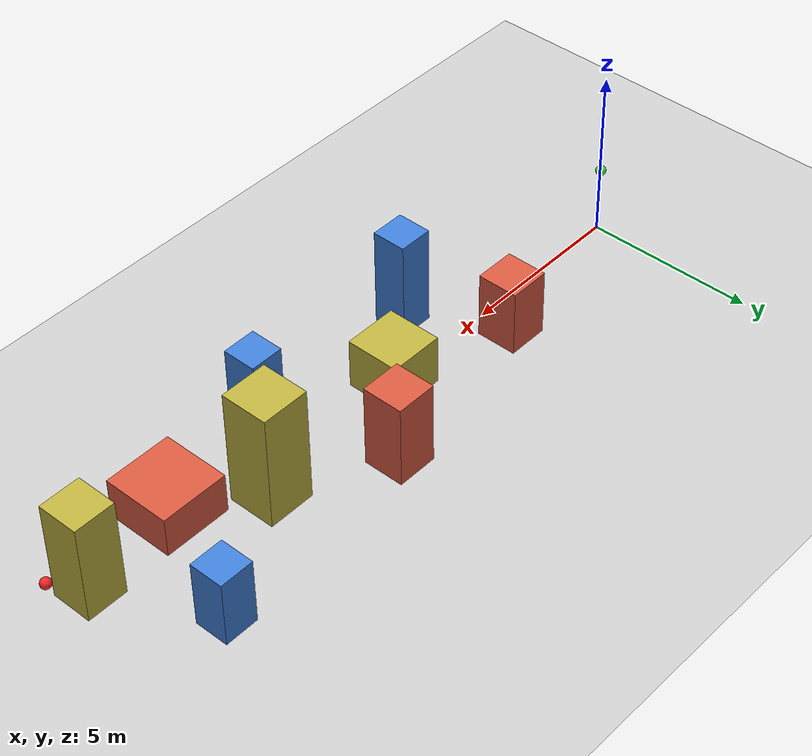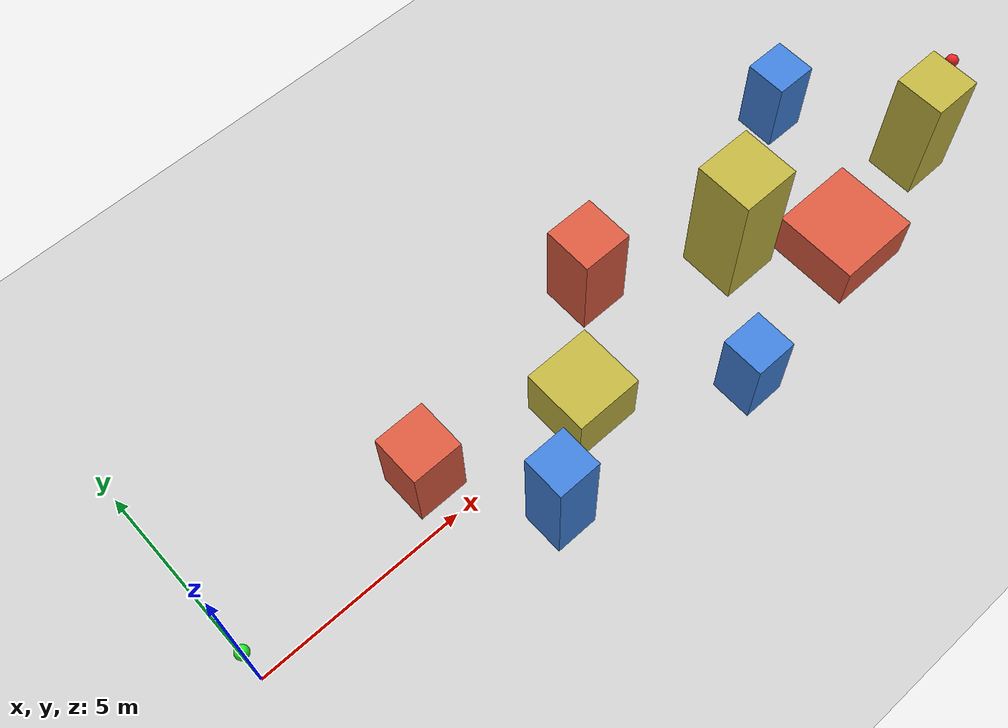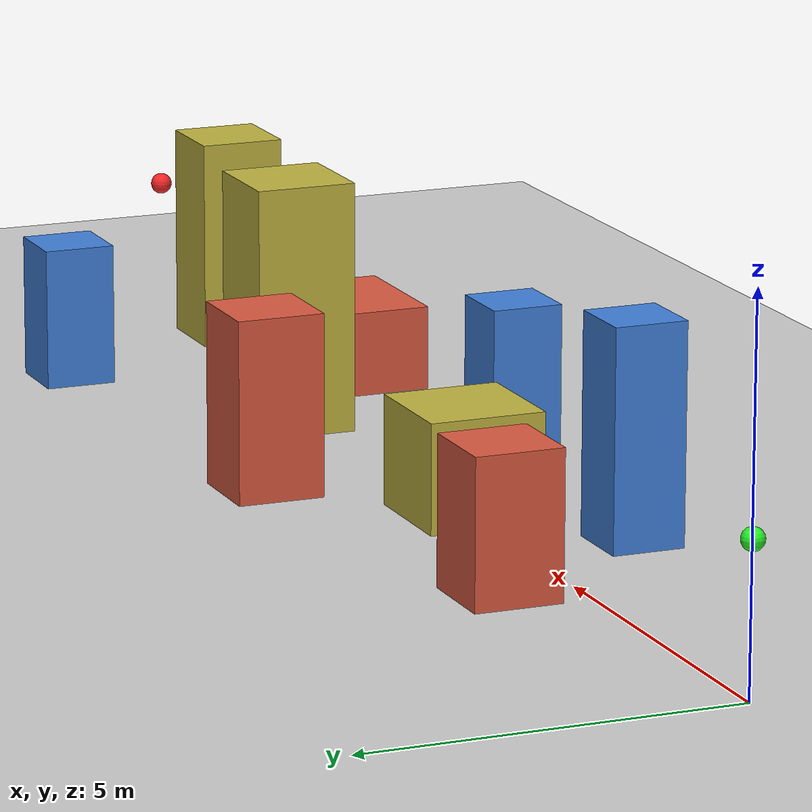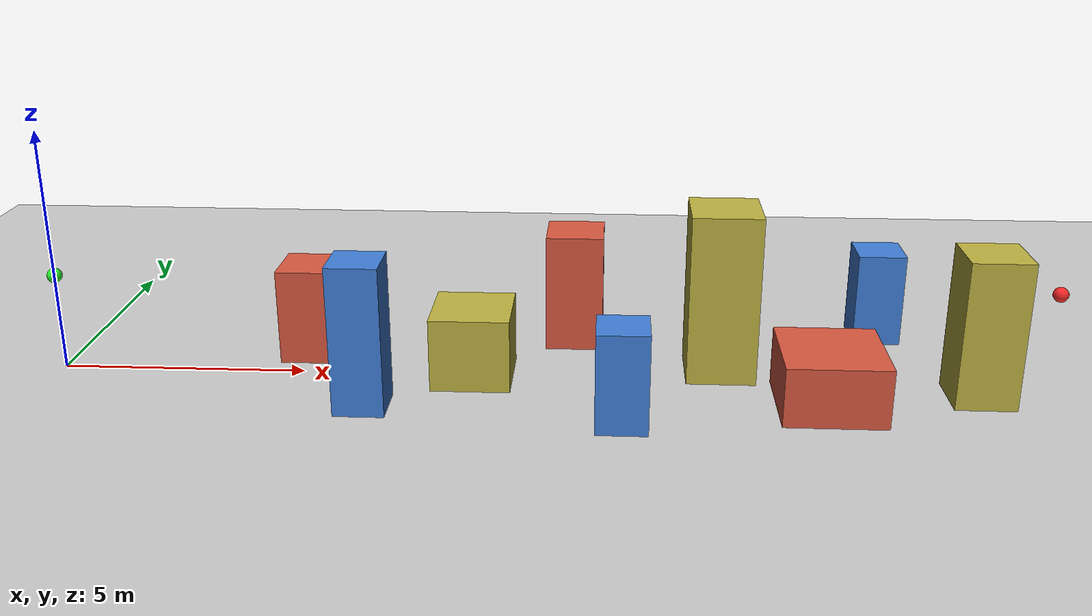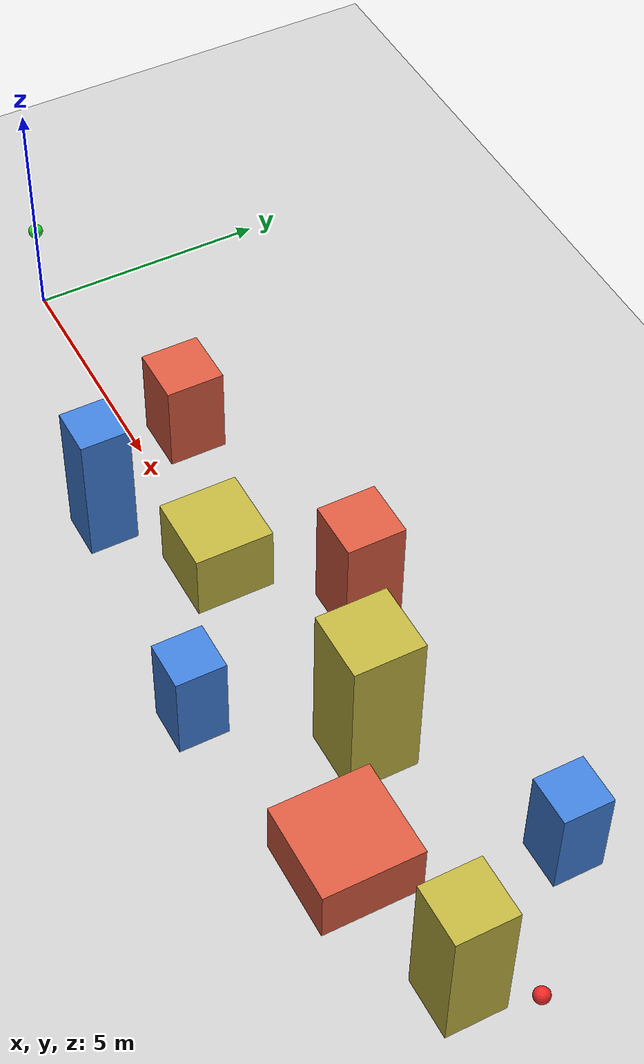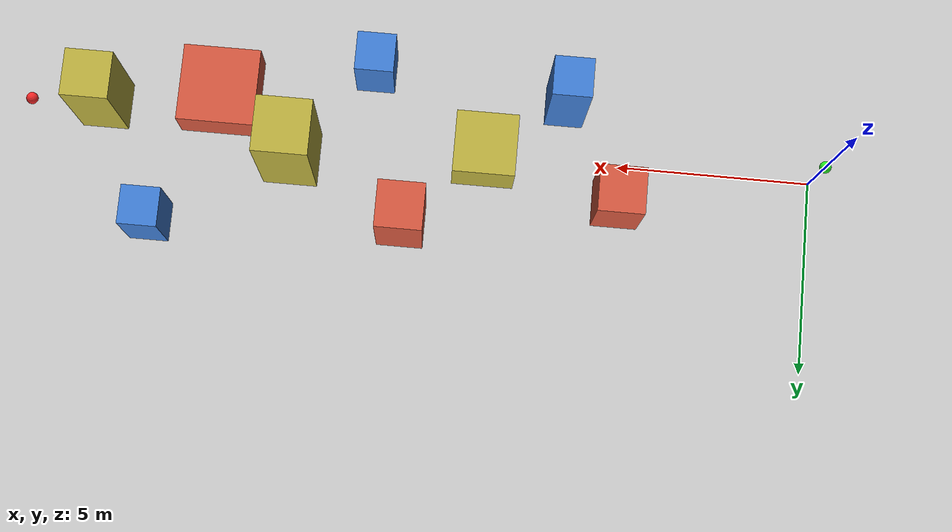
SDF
<?xml version="1.0" ?>
<sdf version="1.6">
  <world name="obstacle_course">

    <include><uri>model://sun</uri></include>
    <include><uri>model://ground_plane</uri></include>

    <physics name="default_physics" type="ode">
      <max_step_size>0.001</max_step_size>
      <real_time_update_rate>1000</real_time_update_rate>
    </physics>

    <scene>
      <ambient>0.5 0.5 0.5 1</ambient>
      <background>0.75 0.78 0.82 1</background>
    </scene>

    <!-- ============ 障碍物 ============ -->

    <model name="pillar_1">
      <static>true</static>
      <pose>5 1.0 1.0 0 0 0</pose>
      <link name="link">
        <collision name="collision">
          <geometry><box><size>1.2 1.2 2.0</size></box></geometry>
        </collision>
        <visual name="visual">
          <geometry><box><size>1.2 1.2 2.0</size></box></geometry>
          <material><ambient>0.7 0.3 0.2 1</ambient><diffuse>0.85 0.35 0.25 1</diffuse></material>
        </visual>
      </link>
    </model>

    <model name="pillar_2">
      <static>true</static>
      <pose>6.5 -1.5 1.5 0 0 0</pose>
      <link name="link">
        <collision name="collision">
          <geometry><box><size>1.0 1.0 3.0</size></box></geometry>
        </collision>
        <visual name="visual">
          <geometry><box><size>1.0 1.0 3.0</size></box></geometry>
          <material><ambient>0.2 0.4 0.7 1</ambient><diffuse>0.25 0.5 0.85 1</diffuse></material>
        </visual>
      </link>
    </model>

    <model name="block_3">
      <static>true</static>
      <pose>8.5 0.0 0.75 0 0 0</pose>
      <link name="link">
        <collision name="collision">
          <geometry><box><size>1.6 1.6 1.5</size></box></geometry>
        </collision>
        <visual name="visual">
          <geometry><box><size>1.6 1.6 1.5</size></box></geometry>
          <material><ambient>0.6 0.55 0.2 1</ambient><diffuse>0.75 0.7 0.25 1</diffuse></material>
        </visual>
      </link>
    </model>

    <model name="pillar_4">
      <static>true</static>
      <pose>10.5 2.0 1.25 0 0 0</pose>
      <link name="link">
        <collision name="collision">
          <geometry><box><size>1.2 1.2 2.5</size></box></geometry>
        </collision>
        <visual name="visual">
          <geometry><box><size>1.2 1.2 2.5</size></box></geometry>
          <material><ambient>0.7 0.3 0.2 1</ambient><diffuse>0.85 0.35 0.25 1</diffuse></material>
        </visual>
      </link>
    </model>

    <model name="pillar_5">
      <static>true</static>
      <pose>11.5 -2.0 1.0 0 0 0</pose>
      <link name="link">
        <collision name="collision">
          <geometry><box><size>1.0 1.0 2.0</size></box></geometry>
        </collision>
        <visual name="visual">
          <geometry><box><size>1.0 1.0 2.0</size></box></geometry>
          <material><ambient>0.2 0.4 0.7 1</ambient><diffuse>0.25 0.5 0.85 1</diffuse></material>
        </visual>
      </link>
    </model>

    <model name="pillar_6">
      <static>true</static>
      <pose>13.5 0.5 1.75 0 0 0</pose>
      <link name="link">
        <collision name="collision">
          <geometry><box><size>1.4 1.4 3.5</size></box></geometry>
        </collision>
        <visual name="visual">
          <geometry><box><size>1.4 1.4 3.5</size></box></geometry>
          <material><ambient>0.6 0.55 0.2 1</ambient><diffuse>0.75 0.7 0.25 1</diffuse></material>
        </visual>
      </link>
    </model>

    <model name="block_7">
      <static>true</static>
      <pose>15.5 -1.0 0.6 0 0 0</pose>
      <link name="link">
        <collision name="collision">
          <geometry><box><size>2.0 2.0 1.2</size></box></geometry>
        </collision>
        <visual name="visual">
          <geometry><box><size>2.0 2.0 1.2</size></box></geometry>
          <material><ambient>0.7 0.3 0.2 1</ambient><diffuse>0.85 0.35 0.25 1</diffuse></material>
        </visual>
      </link>
    </model>

    <model name="pillar_8">
      <static>true</static>
      <pose>17.0 2.5 1.0 0 0 0</pose>
      <link name="link">
        <collision name="collision">
          <geometry><box><size>1.0 1.0 2.0</size></box></geometry>
        </collision>
        <visual name="visual">
          <geometry><box><size>1.0 1.0 2.0</size></box></geometry>
          <material><ambient>0.2 0.4 0.7 1</ambient><diffuse>0.25 0.5 0.85 1</diffuse></material>
        </visual>
      </link>
    </model>

    <model name="pillar_9">
      <static>true</static>
      <pose>18.5 -0.5 1.5 0 0 0</pose>
      <link name="link">
        <collision name="collision">
          <geometry><box><size>1.2 1.2 3.0</size></box></geometry>
        </collision>
        <visual name="visual">
          <geometry><box><size>1.2 1.2 3.0</size></box></geometry>
          <material><ambient>0.6 0.55 0.2 1</ambient><diffuse>0.75 0.7 0.25 1</diffuse></material>
        </visual>
      </link>
    </model>

    <!-- ============ 起终点标记（仅视觉，便于对照） ============ -->

    <model name="start_marker">
      <static>true</static>
      <pose>0 0 2.0 0 0 0</pose>
      <link name="link">
        <visual name="visual">
          <geometry><sphere><radius>0.15</radius></sphere></geometry>
          <material><ambient>0.1 0.8 0.1 1</ambient><diffuse>0.15 0.95 0.15 1</diffuse></material>
        </visual>
      </link>
    </model>

    <model name="goal_marker">
      <static>true</static>
      <pose>20 0 2.0 0 0 0</pose>
      <link name="link">
        <visual name="visual">
          <geometry><sphere><radius>0.15</radius></sphere></geometry>
          <material><ambient>0.9 0.1 0.1 1</ambient><diffuse>0.95 0.15 0.15 1</diffuse></material>
        </visual>
      </link>
    </model>

  </world>
</sdf>
